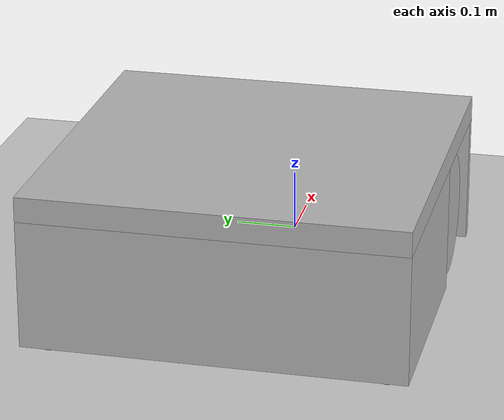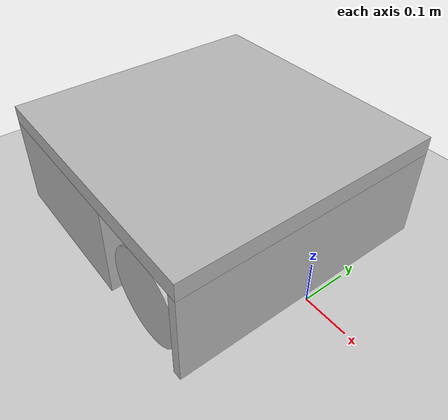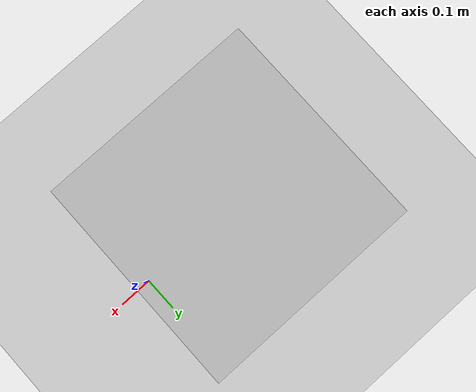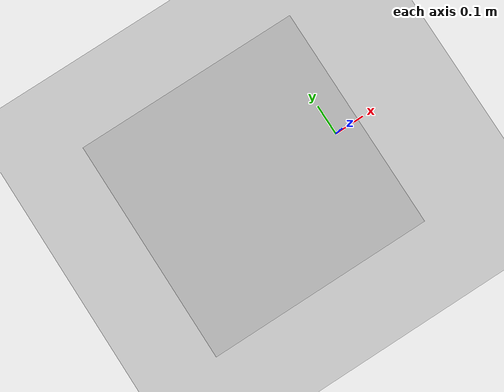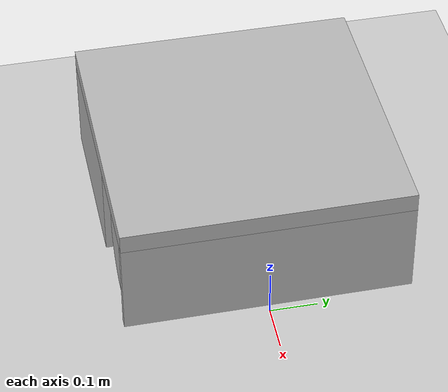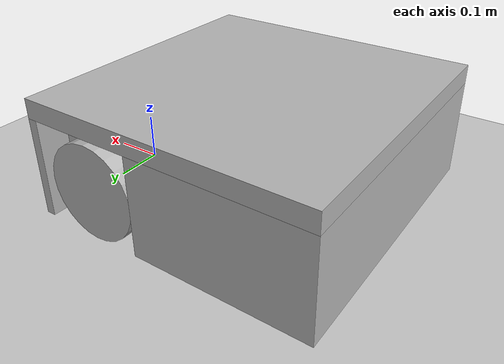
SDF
<?xml version="1.0"?>
<sdf version="1.4">
	<world name="default">

		<!-- Ground Plane -->
		<include>
			<uri>model://ground_plane</uri>
		</include>

		<include>
			<uri>model://sun</uri>
		</include>

		<model name="ProjectBot">
			<pose>0 0 0 0 0 0</pose>
			<link name='chassis'>
				<inertial>
					<mass>13.741</mass>
					<pose>-.269696 -.006844 .12974 0 0 0</pose>
				</inertial>
				<collision name='collision1'>
					<pose>-.1285 0 .12 0 0 0</pose>
					<geometry>
						<box>
							<size>.217 .476 .205</size>
						</box>
					</geometry>
				</collision>
				<visual name='visual1'>
					<pose>-.1285 0 .12 0 0 0</pose>
					<geometry>
						<box>
							<size>.217 .476 .205</size>
						</box>
					</geometry>
				</visual>
				<collision name='collision2'>
					<pose>-.01 0 .12 0 0 0</pose>
					<geometry>
						<box>
							<size>.02 .6 .205</size>
						</box>
					</geometry>
				</collision>
				<visual name='visual2'>
					<pose>-.01 0 .12 0 0 0</pose>
					<geometry>
						<box>
							<size>.02 .6 .205</size>
						</box>
					</geometry>
				</visual>
				<collision name='collision3'>
					<pose>-.4185 0 .12 0 0 0</pose>
					<geometry>
						<box>
							<size>.363 .6 .205</size>
						</box>
					</geometry>
				</collision>
				<visual name='visual3'>
					<pose>-.4185 0 .12 0 0 0</pose>
					<geometry>
						<box>
							<size>.363 .6 .205</size>
						</box>
					</geometry>
				</visual>
				<collision name='collision4'>
					<pose>-.3 0 .2425 0 0 0</pose>
					<geometry>
						<box>
							<size>.6 .6 .04</size>
						</box>
					</geometry>
				</collision>
				<visual name='visual4'>
					<pose>-.3 0 .2425 0 0 0</pose>
					<geometry>
						<box>
							<size>.6 .6 .04</size>
						</box>
					</geometry>
				</visual>
				<collision name='caster_collision1'>
				    	<pose>-0.5635 .2635 .0175 0 0 0</pose>
				        <geometry>
						<sphere>
							<radius>.0175</radius>
				      		</sphere>
				    	</geometry>

				        <surface>
				      		<friction>
							<ode>
							  <mu>0</mu>
							  <mu2>0</mu2>
							  <slip1>1.0</slip1>
							  <slip2>1.0</slip2>
							</ode>
				      		</friction>
				    	</surface>
			   	</collision>
			  	<visual name='caster_visual1'>
					<pose>-0.5635 .2635 .0175 0 0 0</pose>
				        <geometry>
						<sphere>
							<radius>.0175</radius>
				      		</sphere>
				    	</geometry>
			  	</visual>
				<collision name='caster_collision2'>
				    	<pose>-0.5635 -.2635 .0175 0 0 0</pose>
				        <geometry>
						<sphere>
							<radius>.0175</radius>
				      		</sphere>
				    	</geometry>

				        <surface>
				      		<friction>
							<ode>
							  <mu>0</mu>
							  <mu2>0</mu2>
							  <slip1>1.0</slip1>
							  <slip2>1.0</slip2>
							</ode>
				      		</friction>
				    	</surface>
			   	</collision>
			  	<visual name='caster_visual2'>
					<pose>-0.5635 -.2635 .0175 0 0 0</pose>
				        <geometry>
						<sphere>
							<radius>.0175</radius>
				      		</sphere>
				    	</geometry>
			  	</visual>
			</link>
			<link name="wheelLeft">
				<pose>-.125 .263 .1 1.5707 0 0</pose>
				<inertial>
					<mass>1.789</mass>
					<pose>0 0 .002728 0 0 0</pose>
				</inertial>
				<collision name="collisionLW">
				        <geometry>
						<cylinder>
							<radius>.1</radius>
							<length>.05</length>
				      		</cylinder>
				    	</geometry>
				</collision>
				<visual name="visualLW">
				        <geometry>
						<cylinder>
							<radius>.1</radius>
							<length>.05</length>
				      		</cylinder>
				    	</geometry>
				</visual>
			</link>
			<link name="wheelRight">
				<pose>-.125 -.263 .1 1.5707 0 0</pose>
				<inertial>
					<mass>1.789</mass>
					<pose>0 0 -.002728 0 0 0</pose>
				</inertial>
				<collision name="collisionRW">
				        <geometry>
						<cylinder>
							<radius>.1</radius>
							<length>.05</length>
				      		</cylinder>
				    	</geometry>
				</collision>
				<visual name="visualRW">
				        <geometry>
						<cylinder>
							<radius>.1</radius>
							<length>.05</length>
				      		</cylinder>
				    	</geometry>
				</visual>
			</link>
			<joint type="revolute" name="left_wheel_joint">

				<child>wheelLeft</child>
				<parent>chassis</parent>
				<axis>
					<xyz>0 -1 0</xyz>
				</axis>
			</joint>
			<joint type="revolute" name="right_wheel_joint">

				<child>wheelRight</child>
				<parent>chassis</parent>
				<axis>
					<xyz>0 -1 0</xyz>
				</axis>
			</joint>
			<plugin name="differential_drive_controller" filename="libgazebo_ros_diff_drive.so">
				<alwaysOn>true</alwaysOn>
				<updateRate>20</updateRate>
				<leftJoint>left_wheel_joint</leftJoint>
				<rightJoint>right_wheel_joint</rightJoint>
				<legacyMode>true</legacyMode>
				<wheelSeparation>0.526</wheelSeparation>
				<wheelDiameter>0.2</wheelDiameter>
				<torque>20</torque>
				<robotNamespace>/</robotNamespace>
				<commandTopic>cmd_vel</commandTopic>
				<odometryTopic>odom</odometryTopic>
				<odometryFrame>odom</odometryFrame>
				<robotBaseFrame>base_footprint</robotBaseFrame>
			</plugin>
			<plugin name="EncoderPlugin" filename="libencoder.so"/>
		</model>
		<physics type='ode'>
			<real_time_factor>1</real_time_factor>
			<max_step_size>0.001</max_step_size>
  			<real_time_update_rate>1000.000000</real_time_update_rate>
			<gravity>0.000000 0.000000 -9.800000</gravity>
		</physics>
	</world>
</sdf>
